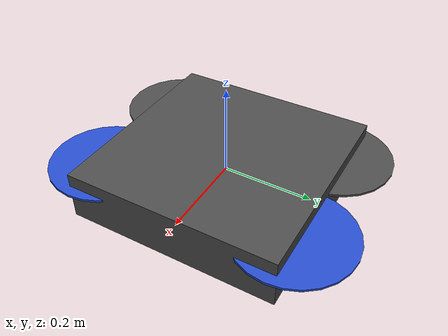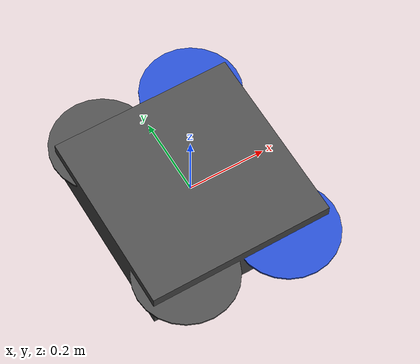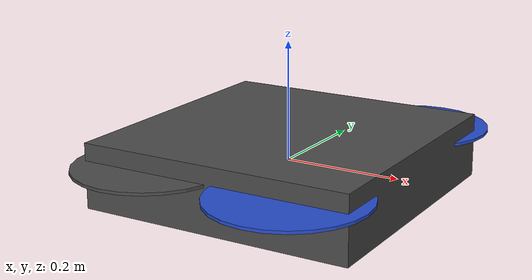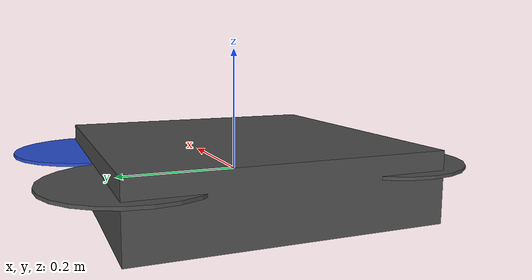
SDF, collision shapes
<?xml version="1.0" ?>
<sdf version="1.5">
  <model name='realsense_d435i'>
    <include>
      <uri>model://iris</uri>
    </include>

    <include>
      <uri>model://realsense_d435i</uri>
      <pose>0.1 -0.2 0.02 0 0 0</pose>
    </include>

    <joint name="realsense_d435i_joint" type="fixed">
      <child>realsense_d435i::link1</child>
      <parent>iris::base_link</parent>
      <axis>
        <xyz>0 0 1</xyz>
        <use_parent_model_frame>true</use_parent_model_frame>
        <limit>
          <upper>0</upper>
          <lower>0</lower>
        </limit>
      </axis>
    </joint>

  </model>
</sdf>

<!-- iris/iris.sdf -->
<sdf version='1.5'>
  <model name='iris'>
    <link name='base_link'>
      <pose frame=''>0 0 0 0 -0 0</pose>
      <inertial>
        <pose frame=''>0 0 0 0 -0 0</pose>
        <mass>1.5</mass>
        <inertia>
          <ixx>0.029125</ixx>
          <ixy>0</ixy>
          <ixz>0</ixz>
          <iyy>0.029125</iyy>
          <iyz>0</iyz>
          <izz>0.055225</izz>
        </inertia>
      </inertial>
      <collision name='base_link_inertia_collision'>
        <pose frame=''>0 0 0 0 -0 0</pose>
        <geometry>
          <box>
            <size>0.47 0.47 0.11</size>
          </box>
        </geometry>
        <surface>
          <contact>
            <ode>
              <min_depth>0.001</min_depth>
              <max_vel>0</max_vel>
            </ode>
          </contact>
          <friction>
            <ode/>
          </friction>
        </surface>
      </collision>
      <visual name='base_link_inertia_visual'>
        <pose frame=''>0 0 0 0 -0 0</pose>
        <geometry>
          <mesh>
            <scale>1 1 1</scale>
            <uri>model://rotors_description/meshes/iris.stl</uri>
          </mesh>
        </geometry>
        <material>
          <script>
            <name>Gazebo/DarkGrey</name>
            <uri>file://media/materials/scripts/gazebo.material</uri>
          </script>
        </material>
      </visual>
      <gravity>1</gravity>
      <velocity_decay/>
    </link>
    <link name='/imu_link'>
      <pose frame=''>0 0 0 0 -0 0</pose>
      <inertial>
        <pose frame=''>0 0 0 0 -0 0</pose>
        <mass>0.015</mass>
        <inertia>
          <ixx>1e-05</ixx>
          <ixy>0</ixy>
          <ixz>0</ixz>
          <iyy>1e-05</iyy>
          <iyz>0</iyz>
          <izz>1e-05</izz>
        </inertia>
      </inertial>
    </link>
    <joint name='/imu_joint' type='revolute'>
      <child>/imu_link</child>
      <parent>base_link</parent>
      <axis>
        <xyz>1 0 0</xyz>
        <limit>
          <lower>0</lower>
          <upper>0</upper>
          <effort>0</effort>
          <velocity>0</velocity>
        </limit>
        <dynamics>
          <spring_reference>0</spring_reference>
          <spring_stiffness>0</spring_stiffness>
        </dynamics>
        <use_parent_model_frame>1</use_parent_model_frame>
      </axis>
    </joint>
    <link name='rotor_0'>
      <pose frame=''>0.13 -0.22 0.023 0 -0 0</pose>
      <inertial>
        <pose frame=''>0 0 0 0 -0 0</pose>
        <mass>0.005</mass>
        <inertia>
          <ixx>9.75e-07</ixx>
          <ixy>0</ixy>
          <ixz>0</ixz>
          <iyy>0.000273104</iyy>
          <iyz>0</iyz>
          <izz>0.000274004</izz>
        </inertia>
      </inertial>
      <collision name='rotor_0_collision'>
        <pose frame=''>0 0 0 0 -0 0</pose>
        <geometry>
          <cylinder>
            <length>0.005</length>
            <radius>0.128</radius>
          </cylinder>
        </geometry>
        <surface>
          <contact>
            <ode/>
          </contact>
          <friction>
            <ode/>
          </friction>
        </surface>
      </collision>
      <visual name='rotor_0_visual'>
        <pose frame=''>0 0 0 0 -0 0</pose>
        <geometry>
          <mesh>
            <scale>1 1 1</scale>
            <uri>model://rotors_description/meshes/iris_prop_ccw.dae</uri>
          </mesh>
        </geometry>
        <material>
          <script>
            <name>Gazebo/Blue</name>
            <uri>file://media/materials/scripts/gazebo.material</uri>
          </script>
        </material>
      </visual>
      <gravity>1</gravity>
      <velocity_decay/>
    </link>
    <joint name='rotor_0_joint' type='revolute'>
      <child>rotor_0</child>
      <parent>base_link</parent>
      <axis>
        <xyz>0 0 1</xyz>
        <limit>
          <lower>-1e+16</lower>
          <upper>1e+16</upper>
        </limit>
        <dynamics>
          <spring_reference>0</spring_reference>
          <spring_stiffness>0</spring_stiffness>
        </dynamics>
        <use_parent_model_frame>1</use_parent_model_frame>
      </axis>
    </joint>
    <link name='rotor_1'>
      <pose frame=''>-0.13 0.2 0.023 0 -0 0</pose>
      <inertial>
        <pose frame=''>0 0 0 0 -0 0</pose>
        <mass>0.005</mass>
        <inertia>
          <ixx>9.75e-07</ixx>
          <ixy>0</ixy>
          <ixz>0</ixz>
          <iyy>0.000273104</iyy>
          <iyz>0</iyz>
          <izz>0.000274004</izz>
        </inertia>
      </inertial>
      <collision name='rotor_1_collision'>
        <pose frame=''>0 0 0 0 -0 0</pose>
        <geometry>
          <cylinder>
            <length>0.005</length>
            <radius>0.128</radius>
          </cylinder>
        </geometry>
        <surface>
          <contact>
            <ode/>
          </contact>
          <friction>
            <ode/>
          </friction>
        </surface>
      </collision>
      <visual name='rotor_1_visual'>
        <pose frame=''>0 0 0 0 -0 0</pose>
        <geometry>
          <mesh>
            <scale>1 1 1</scale>
            <uri>model://rotors_description/meshes/iris_prop_ccw.dae</uri>
          </mesh>
        </geometry>
        <material>
          <script>
            <name>Gazebo/DarkGrey</name>
            <uri>file://media/materials/scripts/gazebo.material</uri>
          </script>
        </material>
      </visual>
      <gravity>1</gravity>
      <velocity_decay/>
    </link>
    <joint name='rotor_1_joint' type='revolute'>
      <child>rotor_1</child>
      <parent>base_link</parent>
      <axis>
        <xyz>0 0 1</xyz>
        <limit>
          <lower>-1e+16</lower>
          <upper>1e+16</upper>
        </limit>
        <dynamics>
          <spring_reference>0</spring_reference>
          <spring_stiffness>0</spring_stiffness>
        </dynamics>
        <use_parent_model_frame>1</use_parent_model_frame>
      </axis>
    </joint>
    <link name='rotor_2'>
      <pose frame=''>0.13 0.22 0.023 0 -0 0</pose>
      <inertial>
        <pose frame=''>0 0 0 0 -0 0</pose>
        <mass>0.005</mass>
        <inertia>
          <ixx>9.75e-07</ixx>
          <ixy>0</ixy>
          <ixz>0</ixz>
          <iyy>0.000273104</iyy>
          <iyz>0</iyz>
          <izz>0.000274004</izz>
        </inertia>
      </inertial>
      <collision name='rotor_2_collision'>
        <pose frame=''>0 0 0 0 -0 0</pose>
        <geometry>
          <cylinder>
            <length>0.005</length>
            <radius>0.128</radius>
          </cylinder>
        </geometry>
        <surface>
          <contact>
            <ode/>
          </contact>
          <friction>
            <ode/>
          </friction>
        </surface>
      </collision>
      <visual name='rotor_2_visual'>
        <pose frame=''>0 0 0 0 -0 0</pose>
        <geometry>
          <mesh>
            <scale>1 1 1</scale>
            <uri>model://rotors_description/meshes/iris_prop_cw.dae</uri>
          </mesh>
        </geometry>
        <material>
          <script>
            <name>Gazebo/Blue</name>
            <uri>file://media/materials/scripts/gazebo.material</uri>
          </script>
        </material>
      </visual>
      <gravity>1</gravity>
      <velocity_decay/>
    </link>
    <joint name='rotor_2_joint' type='revolute'>
      <child>rotor_2</child>
      <parent>base_link</parent>
      <axis>
        <xyz>0 0 1</xyz>
        <limit>
          <lower>-1e+16</lower>
          <upper>1e+16</upper>
        </limit>
        <dynamics>
          <spring_reference>0</spring_reference>
          <spring_stiffness>0</spring_stiffness>
        </dynamics>
        <use_parent_model_frame>1</use_parent_model_frame>
      </axis>
    </joint>
    <link name='rotor_3'>
      <pose frame=''>-0.13 -0.2 0.023 0 -0 0</pose>
      <inertial>
        <pose frame=''>0 0 0 0 -0 0</pose>
        <mass>0.005</mass>
        <inertia>
          <ixx>9.75e-07</ixx>
          <ixy>0</ixy>
          <ixz>0</ixz>
          <iyy>0.000273104</iyy>
          <iyz>0</iyz>
          <izz>0.000274004</izz>
        </inertia>
      </inertial>
      <collision name='rotor_3_collision'>
        <pose frame=''>0 0 0 0 -0 0</pose>
        <geometry>
          <cylinder>
            <length>0.005</length>
            <radius>0.128</radius>
          </cylinder>
        </geometry>
        <surface>
          <contact>
            <ode/>
          </contact>
          <friction>
            <ode/>
          </friction>
        </surface>
      </collision>
      <visual name='rotor_3_visual'>
        <pose frame=''>0 0 0 0 -0 0</pose>
        <geometry>
          <mesh>
            <scale>1 1 1</scale>
            <uri>model://rotors_description/meshes/iris_prop_cw.dae</uri>
          </mesh>
        </geometry>
        <material>
          <script>
            <name>Gazebo/DarkGrey</name>
            <uri>file://media/materials/scripts/gazebo.material</uri>
          </script>
        </material>
      </visual>
      <gravity>1</gravity>
      <velocity_decay/>
    </link>
    <joint name='rotor_3_joint' type='revolute'>
      <child>rotor_3</child>
      <parent>base_link</parent>
      <axis>
        <xyz>0 0 1</xyz>
        <limit>
          <lower>-1e+16</lower>
          <upper>1e+16</upper>
        </limit>
        <dynamics>
          <spring_reference>0</spring_reference>
          <spring_stiffness>0</spring_stiffness>
        </dynamics>
        <use_parent_model_frame>1</use_parent_model_frame>
      </axis>
    </joint>
    <plugin name='rosbag' filename='libgazebo_multirotor_base_plugin.so'>
      <robotNamespace/>
      <linkName>base_link</linkName>
      <rotorVelocitySlowdownSim>10</rotorVelocitySlowdownSim>
    </plugin>
    <plugin name='front_right_motor_model' filename='libgazebo_motor_model.so'>
      <robotNamespace/>
      <jointName>rotor_0_joint</jointName>
      <linkName>rotor_0</linkName>
      <turningDirection>ccw</turningDirection>
      <timeConstantUp>0.0125</timeConstantUp>
      <timeConstantDown>0.025</timeConstantDown>
      <maxRotVelocity>1100</maxRotVelocity>
      <motorConstant>8.54858e-06</motorConstant>
      <momentConstant>0.06</momentConstant>
      <commandSubTopic>/gazebo/command/motor_speed</commandSubTopic>
      <motorNumber>0</motorNumber>
      <rotorDragCoefficient>0.000175</rotorDragCoefficient>
      <rollingMomentCoefficient>1e-06</rollingMomentCoefficient>
      <motorSpeedPubTopic>/motor_speed/0</motorSpeedPubTopic>
      <rotorVelocitySlowdownSim>10</rotorVelocitySlowdownSim>
    </plugin>
    <plugin name='back_left_motor_model' filename='libgazebo_motor_model.so'>
      <robotNamespace/>
      <jointName>rotor_1_joint</jointName>
      <linkName>rotor_1</linkName>
      <turningDirection>ccw</turningDirection>
      <timeConstantUp>0.0125</timeConstantUp>
      <timeConstantDown>0.025</timeConstantDown>
      <maxRotVelocity>1100</maxRotVelocity>
      <motorConstant>8.54858e-06</motorConstant>
      <momentConstant>0.06</momentConstant>
      <commandSubTopic>/gazebo/command/motor_speed</commandSubTopic>
      <motorNumber>1</motorNumber>
      <rotorDragCoefficient>0.000175</rotorDragCoefficient>
      <rollingMomentCoefficient>1e-06</rollingMomentCoefficient>
      <motorSpeedPubTopic>/motor_speed/1</motorSpeedPubTopic>
      <rotorVelocitySlowdownSim>10</rotorVelocitySlowdownSim>
    </plugin>
    <plugin name='front_left_motor_model' filename='libgazebo_motor_model.so'>
      <robotNamespace/>
      <jointName>rotor_2_joint</jointName>
      <linkName>rotor_2</linkName>
      <turningDirection>cw</turningDirection>
      <timeConstantUp>0.0125</timeConstantUp>
      <timeConstantDown>0.025</timeConstantDown>
      <maxRotVelocity>1100</maxRotVelocity>
      <motorConstant>8.54858e-06</motorConstant>
      <momentConstant>0.06</momentConstant>
      <commandSubTopic>/gazebo/command/motor_speed</commandSubTopic>
      <motorNumber>2</motorNumber>
      <rotorDragCoefficient>0.000175</rotorDragCoefficient>
      <rollingMomentCoefficient>1e-06</rollingMomentCoefficient>
      <motorSpeedPubTopic>/motor_speed/2</motorSpeedPubTopic>
      <rotorVelocitySlowdownSim>10</rotorVelocitySlowdownSim>
    </plugin>
    <plugin name='back_right_motor_model' filename='libgazebo_motor_model.so'>
      <robotNamespace/>
      <jointName>rotor_3_joint</jointName>
      <linkName>rotor_3</linkName>
      <turningDirection>cw</turningDirection>
      <timeConstantUp>0.0125</timeConstantUp>
      <timeConstantDown>0.025</timeConstantDown>
      <maxRotVelocity>1100</maxRotVelocity>
      <motorConstant>8.54858e-06</motorConstant>
      <momentConstant>0.06</momentConstant>
      <commandSubTopic>/gazebo/command/motor_speed</commandSubTopic>
      <motorNumber>3</motorNumber>
      <rotorDragCoefficient>0.000175</rotorDragCoefficient>
      <rollingMomentCoefficient>1e-06</rollingMomentCoefficient>
      <motorSpeedPubTopic>/motor_speed/3</motorSpeedPubTopic>
      <rotorVelocitySlowdownSim>10</rotorVelocitySlowdownSim>
    </plugin>
    <plugin name='gps_plugin' filename='libgazebo_gps_plugin.so'>
      <robotNamespace/>
      <gpsNoise>1</gpsNoise>
    </plugin>
    <plugin name='magnetometer_plugin' filename='libgazebo_magnetometer_plugin.so'>
      <robotNamespace/>
      <pubRate>100</pubRate>
      <noiseDensity>0.0004</noiseDensity>
      <randomWalk>6.4e-06</randomWalk>
      <biasCorrelationTime>600</biasCorrelationTime>
      <magTopic>/mag</magTopic>
    </plugin>
    <plugin name='barometer_plugin' filename='libgazebo_barometer_plugin.so'>
      <robotNamespace/>
      <pubRate>50</pubRate>
      <baroTopic>/baro</baroTopic>
    </plugin>
    <plugin name='mavlink_interface' filename='libgazebo_mavlink_interface.so'>
      <robotNamespace/>
      <imuSubTopic>/imu</imuSubTopic>
      <gpsSubTopic>/gps</gpsSubTopic>
      <magSubTopic>/mag</magSubTopic>
      <baroSubTopic>/baro</baroSubTopic>
      <mavlink_addr>INADDR_ANY</mavlink_addr>
      <mavlink_udp_port>14560</mavlink_udp_port>
      <mavlink_tcp_port>4560</mavlink_tcp_port>
      <serialEnabled>0</serialEnabled>
      <serialDevice>/dev/ttyACM0</serialDevice>
      <baudRate>921600</baudRate>
      <qgc_addr>INADDR_ANY</qgc_addr>
      <qgc_udp_port>14550</qgc_udp_port>
      <sdk_addr>INADDR_ANY</sdk_addr>
      <sdk_udp_port>14540</sdk_udp_port>
      <hil_mode>0</hil_mode>
      <hil_state_level>0</hil_state_level>
      <vehicle_is_tailsitter>0</vehicle_is_tailsitter>
      <send_vision_estimation>0</send_vision_estimation>
      <send_odometry>1</send_odometry>
      <enable_lockstep>1</enable_lockstep>
      <use_tcp>1</use_tcp>
      <motorSpeedCommandPubTopic>/gazebo/command/motor_speed</motorSpeedCommandPubTopic>
      <control_channels>
        <channel name='rotor1'>
          <input_index>0</input_index>
          <input_offset>0</input_offset>
          <input_scaling>1000</input_scaling>
          <zero_position_disarmed>0</zero_position_disarmed>
          <zero_position_armed>100</zero_position_armed>
          <joint_control_type>velocity</joint_control_type>
        </channel>
        <channel name='rotor2'>
          <input_index>1</input_index>
          <input_offset>0</input_offset>
          <input_scaling>1000</input_scaling>
          <zero_position_disarmed>0</zero_position_disarmed>
          <zero_position_armed>100</zero_position_armed>
          <joint_control_type>velocity</joint_control_type>
        </channel>
        <channel name='rotor3'>
          <input_index>2</input_index>
          <input_offset>0</input_offset>
          <input_scaling>1000</input_scaling>
          <zero_position_disarmed>0</zero_position_disarmed>
          <zero_position_armed>100</zero_position_armed>
          <joint_control_type>velocity</joint_control_type>
        </channel>
        <channel name='rotor4'>
          <input_index>3</input_index>
          <input_offset>0</input_offset>
          <input_scaling>1000</input_scaling>
          <zero_position_disarmed>0</zero_position_disarmed>
          <zero_position_armed>100</zero_position_armed>
          <joint_control_type>velocity</joint_control_type>
        </channel>
        <channel name='rotor5'>
          <input_index>4</input_index>
          <input_offset>1</input_offset>
          <input_scaling>324.6</input_scaling>
          <zero_position_disarmed>0</zero_position_disarmed>
          <zero_position_armed>0</zero_position_armed>
          <joint_control_type>velocity</joint_control_type>
          <joint_control_pid>
            <p>0.1</p>
            <i>0</i>
            <d>0</d>
            <iMax>0.0</iMax>
            <iMin>0.0</iMin>
            <cmdMax>2</cmdMax>
            <cmdMin>-2</cmdMin>
          </joint_control_pid>
          <joint_name>zephyr_delta_wing::propeller_joint</joint_name>
        </channel>
        <channel name='rotor6'>
          <input_index>5</input_index>
          <input_offset>0</input_offset>
          <input_scaling>0.524</input_scaling>
          <zero_position_disarmed>0</zero_position_disarmed>
          <zero_position_armed>0</zero_position_armed>
          <joint_control_type>position</joint_control_type>
          <joint_name>zephyr_delta_wing::flap_left_joint</joint_name>
          <joint_control_pid>
            <p>10.0</p>
            <i>0</i>
            <d>0</d>
            <iMax>0</iMax>
            <iMin>0</iMin>
            <cmdMax>20</cmdMax>
            <cmdMin>-20</cmdMin>
          </joint_control_pid>
        </channel>
        <channel name='rotor7'>
          <input_index>6</input_index>
          <input_offset>0</input_offset>
          <input_scaling>0.524</input_scaling>
          <zero_position_disarmed>0</zero_position_disarmed>
          <zero_position_armed>0</zero_position_armed>
          <joint_control_type>position</joint_control_type>
          <joint_name>zephyr_delta_wing::flap_right_joint</joint_name>
          <joint_control_pid>
            <p>10.0</p>
            <i>0</i>
            <d>0</d>
            <iMax>0</iMax>
            <iMin>0</iMin>
            <cmdMax>20</cmdMax>
            <cmdMin>-20</cmdMin>
          </joint_control_pid>
        </channel>
        <channel name='rotor8'>
          <input_index>7</input_index>
          <input_offset>0</input_offset>
          <input_scaling>0.524</input_scaling>
          <zero_position_disarmed>0</zero_position_disarmed>
          <zero_position_armed>0</zero_position_armed>
          <joint_control_type>position</joint_control_type>
        </channel>
      </control_channels>
    </plugin>
    <static>0</static>
    <plugin name='rotors_gazebo_imu_plugin' filename='libgazebo_imu_plugin.so'>
      <robotNamespace/>
      <linkName>/imu_link</linkName>
      <imuTopic>/imu</imuTopic>
      <gyroscopeNoiseDensity>0.00018665</gyroscopeNoiseDensity>
      <gyroscopeRandomWalk>3.8785e-05</gyroscopeRandomWalk>
      <gyroscopeBiasCorrelationTime>1000.0</gyroscopeBiasCorrelationTime>
      <gyroscopeTurnOnBiasSigma>0.0087</gyroscopeTurnOnBiasSigma>
      <accelerometerNoiseDensity>0.00186</accelerometerNoiseDensity>
      <accelerometerRandomWalk>0.006</accelerometerRandomWalk>
      <accelerometerBiasCorrelationTime>300.0</accelerometerBiasCorrelationTime>
      <accelerometerTurnOnBiasSigma>0.196</accelerometerTurnOnBiasSigma>
    </plugin>
  </model>
</sdf>

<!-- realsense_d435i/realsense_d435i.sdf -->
<sdf version='1.6'>
  <model name='d435i'>
    <link name='link1'>
      <pose frame=''>0 0 0 0 -0 0</pose>
      <inertial>
        <pose frame=''>0 0.2175 0.0125 0 -0 0</pose>
        <mass>0.564</mass>
        <inertia>
          <ixx>0.00388124</ixx>
          <ixy>0</ixy>
          <ixz>0</ixz>
          <iyy>0.00049894</iyy>
          <iyz>0</iyz>
          <izz>0.00387926</izz>
        </inertia>
      </inertial>
      <collision name='link1_fixed_joint_lump__camera_link_collision'>
        <pose frame=''>0 0.2 0.0125 0 -0 0</pose>
        <geometry>
          <box>
            <size>0.02505 0.09 0.025</size>
          </box>
        </geometry>
        <surface>
          <contact>
            <ode>
              <kp>1e+13</kp>
              <kd>1</kd>
            </ode>
          </contact>
          <friction>
            <ode>
              <mu2>1</mu2>
              <fdir1>0 0 0</fdir1>
            </ode>
          </friction>
        </surface>
      </collision>
      <visual name='link1_fixed_joint_lump__camera_link_visual'>
        <pose frame=''>0.0149 0.2 0.0125 1.5708 -0 1.5708</pose>
        <geometry>
          <mesh>
            <scale>1 1 1</scale>
            <uri>model://realsense-ros/realsense2_description/meshes/d435.dae</uri>
          </mesh>
        </geometry>
        <material>
          <script>
            <uri>__default__</uri>
            <name>__default__</name>
          </script>
        </material>
      </visual>
      <gravity>1</gravity>
      <velocity_decay/>
      <self_collide>0</self_collide>
      <enable_wind>0</enable_wind>
      <kinematic>0</kinematic>
      <gravity>1</gravity>
      <sensor name='realsensecolor' type='camera'>
        <camera name='realsense'>
          <horizontal_fov>1.21126</horizontal_fov>
          <image>
            <width>1920</width>
            <height>1080</height>
            <format>RGB_INT8</format>
          </image>
          <clip>
            <near>0.1</near>
            <far>100</far>
          </clip>
          <noise>
            <type>gaussian</type>
            <mean>0</mean>
            <stddev>0.007</stddev>
          </noise>
        </camera>
        <always_on>1</always_on>
        <update_rate>30</update_rate>
        <visualize>1</visualize>
        <pose frame=''>0 0.2175 0.0125 0 -0 0</pose>
      </sensor>
      <sensor name='realsenseired1' type='camera'>
        <camera name='realsense'>
          <horizontal_fov>1.48702</horizontal_fov>
          <image>
            <width>1280</width>
            <height>720</height>
            <format>L_INT8</format>
          </image>
          <clip>
            <near>0.1</near>
            <far>100</far>
          </clip>
          <noise>
            <type>gaussian</type>
            <mean>0</mean>
            <stddev>0.05</stddev>
          </noise>
        </camera>
        <always_on>1</always_on>
        <update_rate>90</update_rate>
        <visualize>0</visualize>
        <pose frame=''>0 0.2175 0.0125 0 -0 0</pose>
      </sensor>
      <sensor name='realsenseired2' type='camera'>
        <camera name='realsense'>
          <horizontal_fov>1.48702</horizontal_fov>
          <image>
            <width>1280</width>
            <height>720</height>
            <format>L_INT8</format>
          </image>
          <clip>
            <near>0.1</near>
            <far>100</far>
          </clip>
          <noise>
            <type>gaussian</type>
            <mean>0</mean>
            <stddev>0.05</stddev>
          </noise>
        </camera>
        <always_on>1</always_on>
        <update_rate>90</update_rate>
        <visualize>0</visualize>
        <pose frame=''>0 0.2175 0.0125 0 -0 0</pose>
      </sensor>
      <sensor name='realsensedepth' type='depth'>
        <camera name='realsense'>
          <horizontal_fov>1.48702</horizontal_fov>
          <image>
            <width>1280</width>
            <height>720</height>
          </image>
          <clip>
            <near>0.1</near>
            <far>100</far>
          </clip>
          <noise>
            <type>gaussian</type>
            <mean>0</mean>
            <stddev>0.1</stddev>
          </noise>
        </camera>
        <always_on>1</always_on>
        <update_rate>90</update_rate>
        <visualize>0</visualize>
        <pose frame=''>0 0.2175 0.0125 0 -0 0</pose>
      </sensor>
      <sensor name="realsenseimu" type="imu">
        <always_on>true</always_on>
        <update_rate>100</update_rate>
        <visualize>true</visualize>
        <topic>__default_topic__</topic>
        <plugin filename="libgazebo_ros_imu_sensor.so" name="realsenseimu">
	  <robotNamespace></robotNamespace>
          <topicName>camera/imu</topicName>
          <bodyName>imu_link</bodyName>
          <updateRateHZ>10.0</updateRateHZ>
          <gaussianNoise>0.0</gaussianNoise>
          <xyzOffset>0 0 0</xyzOffset>
          <rpyOffset>0 0 0</rpyOffset>
          <frameName>imu_link</frameName>
          <initialOrientationAsReference>false</initialOrientationAsReference>
        </plugin>
        <pose>0 0 0 0 0 0</pose>
      </sensor>
    </link>
    <static>0</static>
    <plugin name='camera' filename='librealsense_gazebo_plugin.so'>
      <prefix>realsense</prefix>
      <depthUpdateRate>60.0</depthUpdateRate>
      <colorUpdateRate>60.0</colorUpdateRate>
      <infraredUpdateRate>60.0</infraredUpdateRate>
      <depthTopicName>depth/image_raw</depthTopicName>
      <depthCameraInfoTopicName>depth/camera_info</depthCameraInfoTopicName>
      <colorTopicName>color/image_raw</colorTopicName>
      <colorCameraInfoTopicName>color/camera_info</colorCameraInfoTopicName>
      <infrared1TopicName>infra1/image_raw</infrared1TopicName>
      <infrared1CameraInfoTopicName>infra1/camera_info</infrared1CameraInfoTopicName>
      <infrared2TopicName>infra2/image_raw</infrared2TopicName>
      <infrared2CameraInfoTopicName>infra2/camera_info</infrared2CameraInfoTopicName>
      <colorOpticalframeName>camera_color_optical_frame</colorOpticalframeName>
      <depthOpticalframeName>camera_depth_optical_frame</depthOpticalframeName>
      <infrared1OpticalframeName>camera_left_ir_optical_frame</infrared1OpticalframeName>
      <infrared2OpticalframeName>camera_right_ir_optical_frame</infrared2OpticalframeName>
      <rangeMinDepth>0.2</rangeMinDepth>
      <rangeMaxDepth>10.0</rangeMaxDepth>
      <pointCloud>0</pointCloud>
      <pointCloudTopicName>depth/points</pointCloudTopicName>
      <pointCloudCutoff>0.5</pointCloudCutoff>
    </plugin>
  </model>
</sdf>
